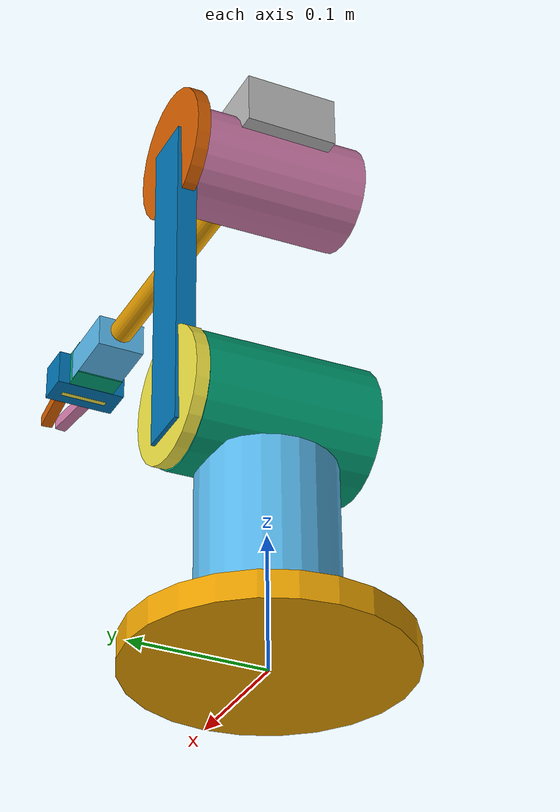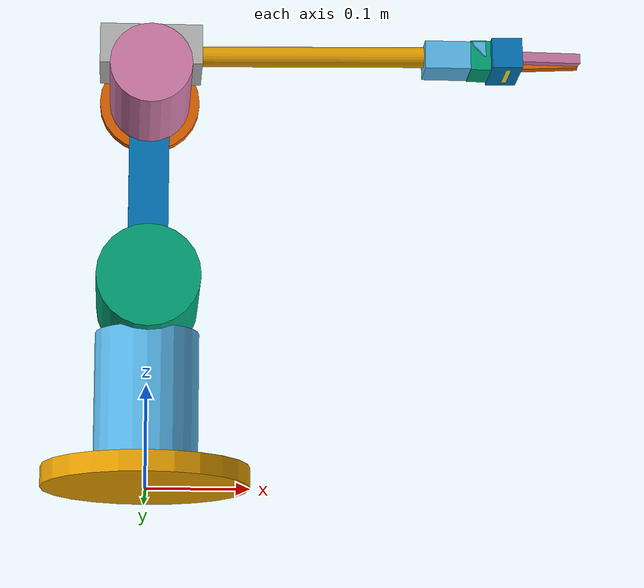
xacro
<?xml version="1.0" ?>
<robot name="mover6" xmlns:xacro="http://www.ros.org/wiki/xacro">
	<xacro:property name="PI" value="3.1415926535897931"/>

  	<xacro:macro name="cylinder_inertia" params="mass radius length">
    	<inertia  ixx="${mass*(3*radius*radius+length*length)/12}" ixy="0" ixz="0"
	              iyy="${mass*(3*radius*radius+length*length)/12}" iyz="0"
	              izz="${mass*radius*radius/2}" />
 	</xacro:macro>

 	<xacro:macro name="box_inertia" params="mass x y z">
	    <inertia  ixx="${mass*(y*y+z*z)/12}" ixy = "0" ixz = "0"
	              iyy="${mass*(x*x+z*z)/12}" iyz = "0"
	              izz="${mass*(x*x+z*z)/12}" />
	</xacro:macro>

 	<xacro:macro name="cylinder_link" params="name mass radius length rgba xyz rpy">
			<link name="${name}">
			<inertial>
				<origin
					  rpy="${rpy}"
					  xyz="${xyz}"/>
				<xacro:cylinder_inertia
					  mass="${mass}"
					  radius="${radius}"
					  length="${length}"/>
				<mass value="${mass}"/>
			</inertial>
			<visual>
				<origin
					  rpy="${rpy}"
					  xyz="${xyz}"/>
				<geometry>
					<cylinder length="${length}" radius="${radius}"/>
				</geometry>
				<material name="color">
					<ambient>${rgba}</ambient>
				</material>
			</visual>
			<collision>
				<origin
					  rpy="${rpy}"
					  xyz="${xyz}"/>
				<geometry>
					<cylinder length="${length}" radius="${radius}"/>
				</geometry>
			</collision>
		</link>
	</xacro:macro>

 	<xacro:macro name="box_link" params="name mass x y z rgba xyz rpy">
		<link name="${name}">
			<inertial>
				<origin
					  rpy="${rpy}"
					  xyz="${xyz}"/>
				<xacro:box_inertia
					  mass="${mass}"
					  x="${x}"
					  y="${y}"
					  z="${z}"/>
				<mass value="${mass}"/>
			</inertial>
			<visual>
				<origin
					  rpy="${rpy}"
					  xyz="${xyz}"/>
				<geometry>
					<box size="${x} ${y} ${z}"/>
				</geometry>
				<material name="color">
					<ambient>${rgba}</ambient>
				</material>
			</visual>
			<collision>
				<origin
					  rpy="${rpy}"
					  xyz="${xyz}"/>
				<geometry>
					<box size="${x} ${y} ${z}"/>
				</geometry>
			</collision>
		</link>
	</xacro:macro>

	<xacro:macro name="axis_joint" params="name type axis parent child xyz rpy effort velocity damping friction">
		<joint name="${name}" type="${type}">
	    <axis xyz="${axis}"/>
	    <parent link="${parent}"/>
	    <child link="${child}"/>
	    <origin rpy="${rpy}" xyz="${xyz}"/>
	    <limit effort="${effort}" velocity="${velocity}"/>
	    <joint_properties damping="${damping}" friction="${friction}"/>
	  </joint>
	</xacro:macro>
	<xacro:macro name="fixed_joint" params="name parent child xyz rpy">
		<joint name="${name}" type="fixed">
	    <parent link="${parent}"/>
	    <child link="${child}"/>
	    <origin rpy="${rpy}" xyz="${xyz}"/>
	  </joint>
	</xacro:macro>

	<xacro:cylinder_link
		  name="base_link"
		  mass="0.1"
		  radius="0.1"
		  length="0.02"
		  rgba="0 0 0 0.9"
		  xyz="0 0 0.01"
		  rpy="0 0 0"/>

	<xacro:cylinder_link
		  name="A1fixed"
		  mass="0.1"
		  radius="0.05"
		  length="0.13"
		  rgba="1 1 1 0.9"
		  xyz="0 0 0.065"
		  rpy="0 0 0"/>
	<xacro:fixed_joint
		  name="basetoA1fixed"
		  parent="base_link"
		  child="A1fixed"
		  xyz="0 0 0.02"
		  rpy="0 0 0"/>

	<xacro:cylinder_link
		  name="Body1"
		  mass="0.05"
		  radius="0.05"
		  length="0.13"
		  rgba="1 1 1 0.9"
		  xyz="0 0 0"
		  rpy="1.552 0 0"/>
	<xacro:axis_joint
		  name="Joint0"
		  type="continuous"
		  axis="0 0 1"
		  parent="base_link"
		  child="Body1"
		  xyz="0 0 0.1925"
		  rpy="0 0 0"
		  effort="100"
		  velocity="100"
		  damping="0.0"
		  friction="0.0"/>

	<xacro:cylinder_link
		  name="Body2"
		  mass="0.05"
		  radius="0.05"
		  length="0.01"
		  rgba="1 1 1 0.9"
		  xyz="0 0.07 0"
		  rpy="1.552 0 0"/>
	<xacro:axis_joint
		  name="Joint1"
		  type="continuous"
		  axis="0 1 0"
		  parent="Body1"
		  child="Body2"
		  xyz="0 0 0"
		  rpy="0 0 0"
		  effort="100"
		  velocity="100"
		  damping="0.0"
		  friction="0.0"/>

	<xacro:box_link
		  name="UpperArm"
		  mass="0.01"
		  x="0.04"
		  y="0.015"
		  z="0.25"
		  rgba="1 1 1 0.9"
		  xyz="0 0.07 0.095"
		  rpy="0 0 0"/>
	<xacro:fixed_joint
		  name="A2basetoA2fixed"
		  parent="Body2"
		  child="UpperArm"
		  xyz="0 0 0"
		  rpy="0 0 0"/>

	<xacro:cylinder_link
		  name="Body20ben"
		  mass="0.01"
		  radius="0.05"
		  length="0.01"
		  rgba="1 1 1 0.9"
		  xyz="0 0.07 0.19"
		  rpy="1.552 0 0"/>
	<xacro:fixed_joint
		  name="A2ArmtoA2Oben"
		  parent="Body2"
		  child="Body20ben"
		  xyz="0 0 0.02"
		  rpy="0 0 0"/>

	<xacro:cylinder_link
		  name="Body3"
		  mass="0.05"
		  radius="0.04"
		  length="0.13"
		  rgba="1 1 1 0.9"
		  xyz="0 0 0.02"
		  rpy="1.552 0 0"/>
	<xacro:axis_joint
		  name="Joint2"
		  type="continuous"
		  axis="0 1 0"
		  parent="Body2"
		  child="Body3"
		  xyz="0 0 0.19"
		  rpy="0 0 0"
		  effort="100"
		  velocity="100"
		  damping="0.0"
		  friction="0.0"/>

	<xacro:box_link
		  name="Body3TopBox"
		  mass="0.01"
		  x="0.1"
		  y="0.07"
		  z="0.04"
		  rgba="1 1 1 0.0"
		  xyz="0 0 0.05"
		  rpy="0 0 0"/>
	<xacro:fixed_joint
		  name="A3basetoA3TopBoxfixed"
		  parent="Body3"
		  child="Body3TopBox"
		  xyz="0 0 0"
		  rpy="0 0 0"/>

	<xacro:cylinder_link
		  name="Body4"
		  mass="0.01"
		  radius="0.01"
		  length="0.3"
		  rgba="0.4 0.4 0.4 0.9"
		  xyz="0.12 0 0"
		  rpy="0 1.552 0"/>
	<xacro:axis_joint
		  name="Joint3"
		  type="continuous"
		  axis="1 0 0"
		  parent="Body3"
		  child="Body4"
		  xyz="0 0 0.05"
		  rpy="0 0 0"
		  effort="100"
		  velocity="100"
		  damping="0.0"
		  friction="0.0"/>

	<xacro:box_link
		  name="Body4Front"
		  mass="0.01"
		  x="0.06"
		  y="0.04"
		  z="0.028"
		  rgba="1 1 1 0.9"
		  xyz="0.3 0 0"
		  rpy="0 0 0"/>
	<xacro:fixed_joint
		  name="A4basetoA4fixed"
		  parent="Body4"
		  child="Body4Front"
		  xyz="0 0 0"
		  rpy="0 0 0"/>

	<xacro:box_link
		  name="Body5"
		  mass="0.01"
		  x="0.03"
		  y="0.04"
		  z="0.03"
		  rgba="1 1 1 0.9"
		  xyz="0.03 0 0"
		  rpy="0 0 0"/>
	<xacro:axis_joint
		  name="Joint4"
		  type="continuous"
		  axis="0 1 0"
		  parent="Body4"
		  child="Body5"
		  xyz="0.3 0 0"
		  rpy="0 0 0"
		  effort="100"
		  velocity="100"
		  damping="0.0"
		  friction="0.0"/>

	<xacro:box_link
		  name="Body6"
		  mass="0.01"
		  x="0.01"
		  y="0.04"
		  z="0.03"
		  rgba="0 0 0 0.9"
		  xyz="0 0 0"
		  rpy="0 0 0"/>
	<xacro:axis_joint
		  name="Joint5"
		  type="continuous"
		  axis="1 0 0"
		  parent="Body5"
		  child="Body6"
		  xyz="0.05 0 0"
		  rpy="0 0 0"
		  effort="100"
		  velocity="100"
		  damping="0.0"
		  friction="0.0"/>

	<xacro:box_link
		  name="GripperBody"
		  mass="0.01"
		  x="0.03"
		  y="0.06"
		  z="0.03"
		  rgba="0.3 0.3 0.3 0.9"
		  xyz="0 0 0"
		  rpy="0 0 0"/>
	<xacro:fixed_joint
		  name="Gripper1"
		  parent="Body6"
		  child="GripperBody"
		  xyz="0 0 0"
		  rpy="0 1.552 0"/>

	<xacro:box_link
		  name="GripperFinger1"
		  mass="0.001"
		  x="0.01"
		  y="0.01"
		  z="0.07"
		  rgba="1 1 1 0.9"
		  xyz="0 0 0.04"
		  rpy="0.1 0 0"/>
	<xacro:fixed_joint
		  name="Gripper2"
		  parent="GripperBody"
		  child="GripperFinger1"
		  xyz="0 0.01 0"
		  rpy="0 0 0"/>

	<xacro:box_link
		  name="GripperFinger2"
		  mass="0.001"
		  x="0.01"
		  y="0.01"
		  z="0.07"
		  rgba="1 1 1 0.9"
		  xyz="0 0 0.04"
		  rpy="-0.1 0 0"/>
	<xacro:fixed_joint
		  name="Gripper3"
		  parent="GripperBody"
		  child="GripperFinger2"
		  xyz="0 -0.01 0"
		  rpy="0 0 0"/>

</robot>
